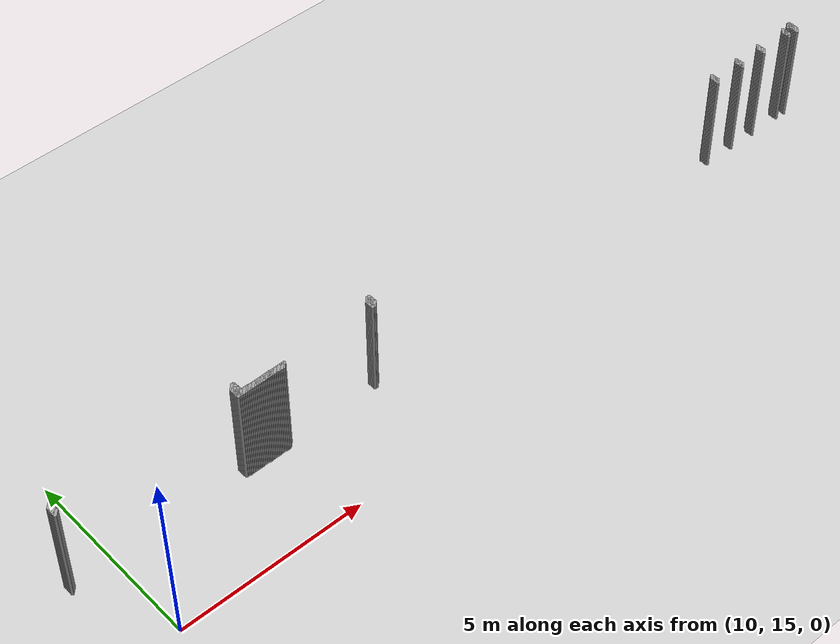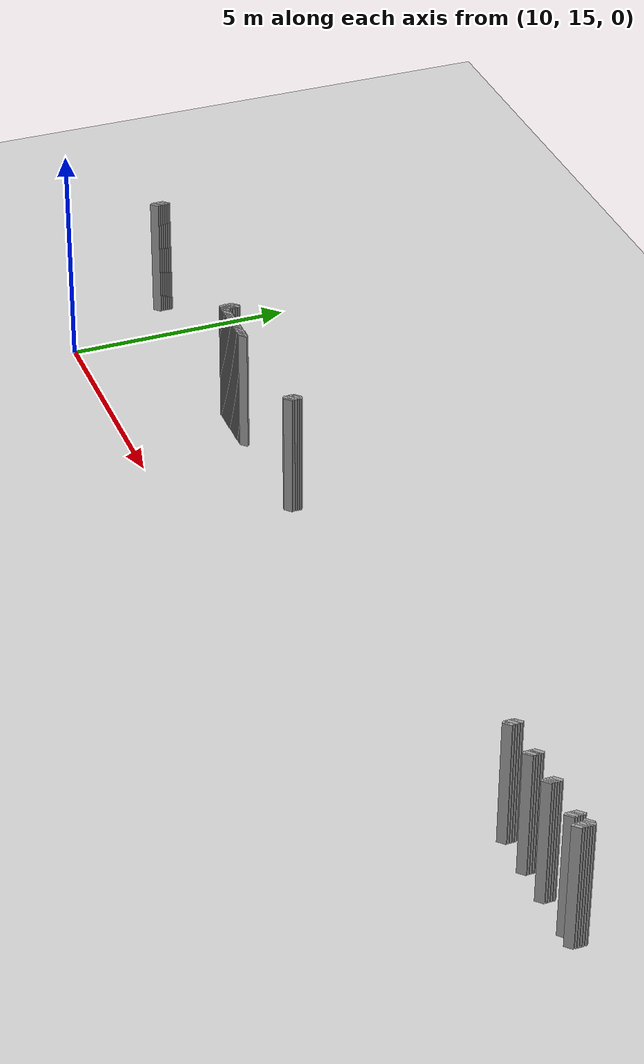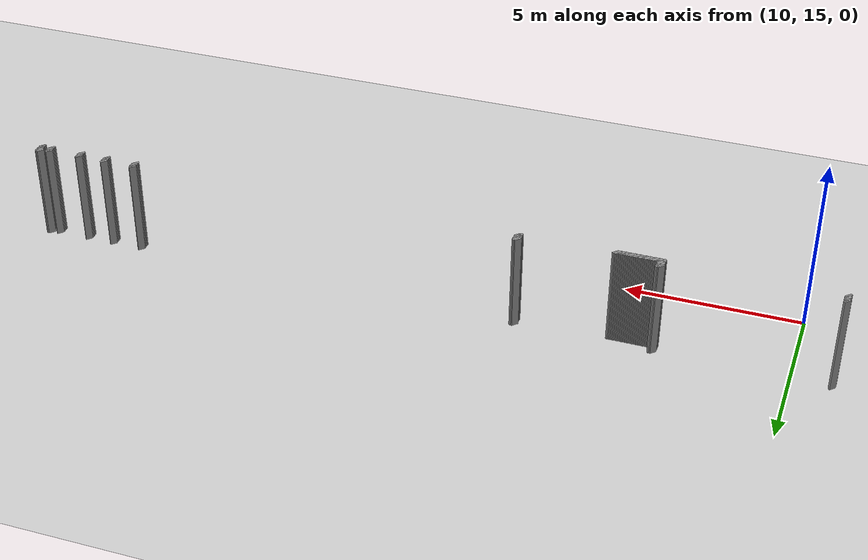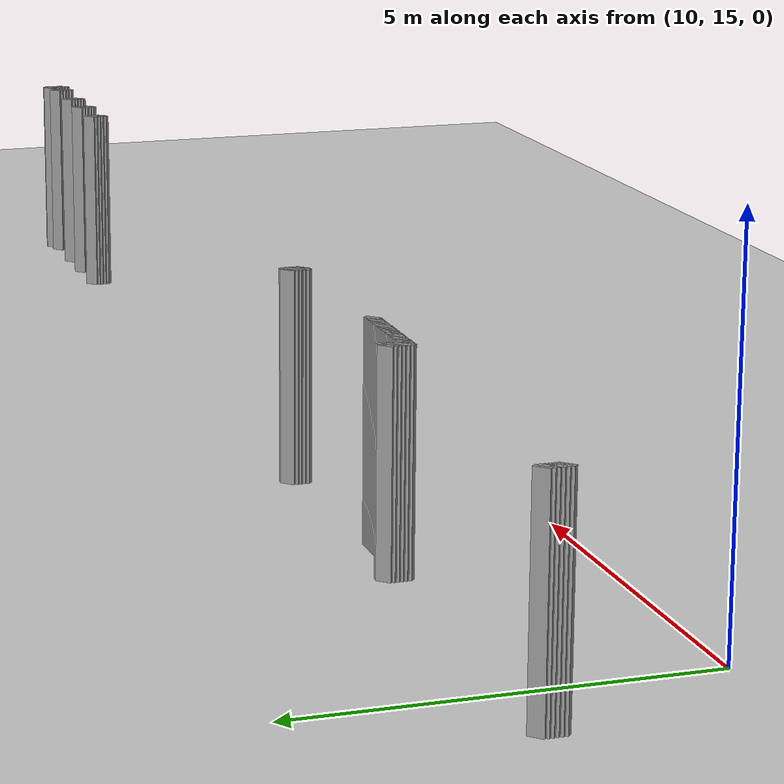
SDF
<sdf version="1.5">
 <world name="default">
  <include><uri>model://ground_plane</uri></include>
  <include><uri>model://sun</uri></include>
  <model name="grey_wall_790">
   <static>1</static>
   <link name="link">
    <pose>31.7 17.65  1.4 0 0 -0.785398163397</pose>
    <collision name="collision"><geometry><box><size>0.0707106781187 .2  2.8</size></box></geometry></collision>
    <visual name="visual">
     <cast_shadows>0</cast_shadows>
     <geometry><box><size>0.0707106781187 .2  2.8</size></box></geometry>
     <material>
      <script>
       <uri>model://grey_wall/materials/scripts</uri>
       <uri>model://grey_wall/materials/textures</uri>
       <name>vrc/grey_wall</name>
      </script>
     </material>
    </visual>
   </link>
  </model>
  <model name="grey_wall_791">
   <static>1</static>
   <link name="link">
    <pose>31.75 17.65  1.4 0 0 -0.785398163397</pose>
    <collision name="collision"><geometry><box><size>0.0707106781187 .2  2.8</size></box></geometry></collision>
    <visual name="visual">
     <cast_shadows>0</cast_shadows>
     <geometry><box><size>0.0707106781187 .2  2.8</size></box></geometry>
     <material>
      <script>
       <uri>model://grey_wall/materials/scripts</uri>
       <uri>model://grey_wall/materials/textures</uri>
       <name>vrc/grey_wall</name>
      </script>
     </material>
    </visual>
   </link>
  </model>
  <model name="grey_wall_792">
   <static>1</static>
   <link name="link">
    <pose>8.9 17.6  1.4 0 0 -0.785398163397</pose>
    <collision name="collision"><geometry><box><size>0.0707106781187 .2  2.8</size></box></geometry></collision>
    <visual name="visual">
     <cast_shadows>0</cast_shadows>
     <geometry><box><size>0.0707106781187 .2  2.8</size></box></geometry>
     <material>
      <script>
       <uri>model://grey_wall/materials/scripts</uri>
       <uri>model://grey_wall/materials/textures</uri>
       <name>vrc/grey_wall</name>
      </script>
     </material>
    </visual>
   </link>
  </model>
  <model name="grey_wall_793">
   <static>1</static>
   <link name="link">
    <pose>13.65 17.6  1.4 0 0 -0.785398163397</pose>
    <collision name="collision"><geometry><box><size>0.0707106781187 .2  2.8</size></box></geometry></collision>
    <visual name="visual">
     <cast_shadows>0</cast_shadows>
     <geometry><box><size>0.0707106781187 .2  2.8</size></box></geometry>
     <material>
      <script>
       <uri>model://grey_wall/materials/scripts</uri>
       <uri>model://grey_wall/materials/textures</uri>
       <name>vrc/grey_wall</name>
      </script>
     </material>
    </visual>
   </link>
  </model>
  <model name="grey_wall_794">
   <static>1</static>
   <link name="link">
    <pose>13.7 17.6  1.4 0 0 -0.785398163397</pose>
    <collision name="collision"><geometry><box><size>0.0707106781187 .2  2.8</size></box></geometry></collision>
    <visual name="visual">
     <cast_shadows>0</cast_shadows>
     <geometry><box><size>0.0707106781187 .2  2.8</size></box></geometry>
     <material>
      <script>
       <uri>model://grey_wall/materials/scripts</uri>
       <uri>model://grey_wall/materials/textures</uri>
       <name>vrc/grey_wall</name>
      </script>
     </material>
    </visual>
   </link>
  </model>
  <model name="grey_wall_795">
   <static>1</static>
   <link name="link">
    <pose>17.5 17.6  1.4 0 0 -0.785398163397</pose>
    <collision name="collision"><geometry><box><size>0.0707106781187 .2  2.8</size></box></geometry></collision>
    <visual name="visual">
     <cast_shadows>0</cast_shadows>
     <geometry><box><size>0.0707106781187 .2  2.8</size></box></geometry>
     <material>
      <script>
       <uri>model://grey_wall/materials/scripts</uri>
       <uri>model://grey_wall/materials/textures</uri>
       <name>vrc/grey_wall</name>
      </script>
     </material>
    </visual>
   </link>
  </model>
  <model name="grey_wall_796">
   <static>1</static>
   <link name="link">
    <pose>17.55 17.6  1.4 0 0 -0.785398163397</pose>
    <collision name="collision"><geometry><box><size>0.0707106781187 .2  2.8</size></box></geometry></collision>
    <visual name="visual">
     <cast_shadows>0</cast_shadows>
     <geometry><box><size>0.0707106781187 .2  2.8</size></box></geometry>
     <material>
      <script>
       <uri>model://grey_wall/materials/scripts</uri>
       <uri>model://grey_wall/materials/textures</uri>
       <name>vrc/grey_wall</name>
      </script>
     </material>
    </visual>
   </link>
  </model>
  <model name="grey_wall_797">
   <static>1</static>
   <link name="link">
    <pose>28.8 17.6  1.4 0 0 -0.785398163397</pose>
    <collision name="collision"><geometry><box><size>0.0707106781187 .2  2.8</size></box></geometry></collision>
    <visual name="visual">
     <cast_shadows>0</cast_shadows>
     <geometry><box><size>0.0707106781187 .2  2.8</size></box></geometry>
     <material>
      <script>
       <uri>model://grey_wall/materials/scripts</uri>
       <uri>model://grey_wall/materials/textures</uri>
       <name>vrc/grey_wall</name>
      </script>
     </material>
    </visual>
   </link>
  </model>
  <model name="grey_wall_798">
   <static>1</static>
   <link name="link">
    <pose>29.7 17.6  1.4 0 0 -0.785398163397</pose>
    <collision name="collision"><geometry><box><size>0.0707106781187 .2  2.8</size></box></geometry></collision>
    <visual name="visual">
     <cast_shadows>0</cast_shadows>
     <geometry><box><size>0.0707106781187 .2  2.8</size></box></geometry>
     <material>
      <script>
       <uri>model://grey_wall/materials/scripts</uri>
       <uri>model://grey_wall/materials/textures</uri>
       <name>vrc/grey_wall</name>
      </script>
     </material>
    </visual>
   </link>
  </model>
  <model name="grey_wall_799">
   <static>1</static>
   <link name="link">
    <pose>30.5 17.6  1.4 0 0 -0.785398163397</pose>
    <collision name="collision"><geometry><box><size>0.0707106781187 .2  2.8</size></box></geometry></collision>
    <visual name="visual">
     <cast_shadows>0</cast_shadows>
     <geometry><box><size>0.0707106781187 .2  2.8</size></box></geometry>
     <material>
      <script>
       <uri>model://grey_wall/materials/scripts</uri>
       <uri>model://grey_wall/materials/textures</uri>
       <name>vrc/grey_wall</name>
      </script>
     </material>
    </visual>
   </link>
  </model>
  <model name="grey_wall_800">
   <static>1</static>
   <link name="link">
    <pose>31.45 17.6  1.4 0 0 -0.785398163397</pose>
    <collision name="collision"><geometry><box><size>0.0707106781187 .2  2.8</size></box></geometry></collision>
    <visual name="visual">
     <cast_shadows>0</cast_shadows>
     <geometry><box><size>0.0707106781187 .2  2.8</size></box></geometry>
     <material>
      <script>
       <uri>model://grey_wall/materials/scripts</uri>
       <uri>model://grey_wall/materials/textures</uri>
       <name>vrc/grey_wall</name>
      </script>
     </material>
    </visual>
   </link>
  </model>
  <model name="grey_wall_801">
   <static>1</static>
   <link name="link">
    <pose>31.75 17.6  1.4 0 0 -0.785398163397</pose>
    <collision name="collision"><geometry><box><size>0.0707106781187 .2  2.8</size></box></geometry></collision>
    <visual name="visual">
     <cast_shadows>0</cast_shadows>
     <geometry><box><size>0.0707106781187 .2  2.8</size></box></geometry>
     <material>
      <script>
       <uri>model://grey_wall/materials/scripts</uri>
       <uri>model://grey_wall/materials/textures</uri>
       <name>vrc/grey_wall</name>
      </script>
     </material>
    </visual>
   </link>
  </model>
  <model name="grey_wall_802">
   <static>1</static>
   <link name="link">
    <pose>8.9 17.55  1.4 0 0 -0.785398163397</pose>
    <collision name="collision"><geometry><box><size>0.0707106781187 .2  2.8</size></box></geometry></collision>
    <visual name="visual">
     <cast_shadows>0</cast_shadows>
     <geometry><box><size>0.0707106781187 .2  2.8</size></box></geometry>
     <material>
      <script>
       <uri>model://grey_wall/materials/scripts</uri>
       <uri>model://grey_wall/materials/textures</uri>
       <name>vrc/grey_wall</name>
      </script>
     </material>
    </visual>
   </link>
  </model>
  <model name="grey_wall_803">
   <static>1</static>
   <link name="link">
    <pose>13.65 17.55  1.4 0 0 -0.785398163397</pose>
    <collision name="collision"><geometry><box><size>0.0707106781187 .2  2.8</size></box></geometry></collision>
    <visual name="visual">
     <cast_shadows>0</cast_shadows>
     <geometry><box><size>0.0707106781187 .2  2.8</size></box></geometry>
     <material>
      <script>
       <uri>model://grey_wall/materials/scripts</uri>
       <uri>model://grey_wall/materials/textures</uri>
       <name>vrc/grey_wall</name>
      </script>
     </material>
    </visual>
   </link>
  </model>
  <model name="grey_wall_804">
   <static>1</static>
   <link name="link">
    <pose>13.7 17.55  1.4 0 0 -0.785398163397</pose>
    <collision name="collision"><geometry><box><size>0.0707106781187 .2  2.8</size></box></geometry></collision>
    <visual name="visual">
     <cast_shadows>0</cast_shadows>
     <geometry><box><size>0.0707106781187 .2  2.8</size></box></geometry>
     <material>
      <script>
       <uri>model://grey_wall/materials/scripts</uri>
       <uri>model://grey_wall/materials/textures</uri>
       <name>vrc/grey_wall</name>
      </script>
     </material>
    </visual>
   </link>
  </model>
  <model name="grey_wall_805">
   <static>1</static>
   <link name="link">
    <pose>17.5 17.55  1.4 0 0 -0.785398163397</pose>
    <collision name="collision"><geometry><box><size>0.0707106781187 .2  2.8</size></box></geometry></collision>
    <visual name="visual">
     <cast_shadows>0</cast_shadows>
     <geometry><box><size>0.0707106781187 .2  2.8</size></box></geometry>
     <material>
      <script>
       <uri>model://grey_wall/materials/scripts</uri>
       <uri>model://grey_wall/materials/textures</uri>
       <name>vrc/grey_wall</name>
      </script>
     </material>
    </visual>
   </link>
  </model>
  <model name="grey_wall_806">
   <static>1</static>
   <link name="link">
    <pose>17.55 17.55  1.4 0 0 -0.785398163397</pose>
    <collision name="collision"><geometry><box><size>0.0707106781187 .2  2.8</size></box></geometry></collision>
    <visual name="visual">
     <cast_shadows>0</cast_shadows>
     <geometry><box><size>0.0707106781187 .2  2.8</size></box></geometry>
     <material>
      <script>
       <uri>model://grey_wall/materials/scripts</uri>
       <uri>model://grey_wall/materials/textures</uri>
       <name>vrc/grey_wall</name>
      </script>
     </material>
    </visual>
   </link>
  </model>
  <model name="grey_wall_807">
   <static>1</static>
   <link name="link">
    <pose>28.8 17.55  1.4 0 0 -0.785398163397</pose>
    <collision name="collision"><geometry><box><size>0.0707106781187 .2  2.8</size></box></geometry></collision>
    <visual name="visual">
     <cast_shadows>0</cast_shadows>
     <geometry><box><size>0.0707106781187 .2  2.8</size></box></geometry>
     <material>
      <script>
       <uri>model://grey_wall/materials/scripts</uri>
       <uri>model://grey_wall/materials/textures</uri>
       <name>vrc/grey_wall</name>
      </script>
     </material>
    </visual>
   </link>
  </model>
  <model name="grey_wall_808">
   <static>1</static>
   <link name="link">
    <pose>29.7 17.55  1.4 0 0 -0.785398163397</pose>
    <collision name="collision"><geometry><box><size>0.0707106781187 .2  2.8</size></box></geometry></collision>
    <visual name="visual">
     <cast_shadows>0</cast_shadows>
     <geometry><box><size>0.0707106781187 .2  2.8</size></box></geometry>
     <material>
      <script>
       <uri>model://grey_wall/materials/scripts</uri>
       <uri>model://grey_wall/materials/textures</uri>
       <name>vrc/grey_wall</name>
      </script>
     </material>
    </visual>
   </link>
  </model>
  <model name="grey_wall_809">
   <static>1</static>
   <link name="link">
    <pose>30.5 17.55  1.4 0 0 -0.785398163397</pose>
    <collision name="collision"><geometry><box><size>0.0707106781187 .2  2.8</size></box></geometry></collision>
    <visual name="visual">
     <cast_shadows>0</cast_shadows>
     <geometry><box><size>0.0707106781187 .2  2.8</size></box></geometry>
     <material>
      <script>
       <uri>model://grey_wall/materials/scripts</uri>
       <uri>model://grey_wall/materials/textures</uri>
       <name>vrc/grey_wall</name>
      </script>
     </material>
    </visual>
   </link>
  </model>
  <model name="grey_wall_810">
   <static>1</static>
   <link name="link">
    <pose>31.45 17.55  1.4 0 0 -0.785398163397</pose>
    <collision name="collision"><geometry><box><size>0.0707106781187 .2  2.8</size></box></geometry></collision>
    <visual name="visual">
     <cast_shadows>0</cast_shadows>
     <geometry><box><size>0.0707106781187 .2  2.8</size></box></geometry>
     <material>
      <script>
       <uri>model://grey_wall/materials/scripts</uri>
       <uri>model://grey_wall/materials/textures</uri>
       <name>vrc/grey_wall</name>
      </script>
     </material>
    </visual>
   </link>
  </model>
  <model name="grey_wall_811">
   <static>1</static>
   <link name="link">
    <pose>31.75 17.55  1.4 0 0 -0.785398163397</pose>
    <collision name="collision"><geometry><box><size>0.0707106781187 .2  2.8</size></box></geometry></collision>
    <visual name="visual">
     <cast_shadows>0</cast_shadows>
     <geometry><box><size>0.0707106781187 .2  2.8</size></box></geometry>
     <material>
      <script>
       <uri>model://grey_wall/materials/scripts</uri>
       <uri>model://grey_wall/materials/textures</uri>
       <name>vrc/grey_wall</name>
      </script>
     </material>
    </visual>
   </link>
  </model>
  <model name="grey_wall_812">
   <static>1</static>
   <link name="link">
    <pose>8.9 17.5  1.4 0 0 -0.785398163397</pose>
    <collision name="collision"><geometry><box><size>0.0707106781187 .2  2.8</size></box></geometry></collision>
    <visual name="visual">
     <cast_shadows>0</cast_shadows>
     <geometry><box><size>0.0707106781187 .2  2.8</size></box></geometry>
     <material>
      <script>
       <uri>model://grey_wall/materials/scripts</uri>
       <uri>model://grey_wall/materials/textures</uri>
       <name>vrc/grey_wall</name>
      </script>
     </material>
    </visual>
   </link>
  </model>
  <model name="grey_wall_813">
   <static>1</static>
   <link name="link">
    <pose>13.65 17.5  1.4 0 0 -0.785398163397</pose>
    <collision name="collision"><geometry><box><size>0.0707106781187 .2  2.8</size></box></geometry></collision>
    <visual name="visual">
     <cast_shadows>0</cast_shadows>
     <geometry><box><size>0.0707106781187 .2  2.8</size></box></geometry>
     <material>
      <script>
       <uri>model://grey_wall/materials/scripts</uri>
       <uri>model://grey_wall/materials/textures</uri>
       <name>vrc/grey_wall</name>
      </script>
     </material>
    </visual>
   </link>
  </model>
  <model name="grey_wall_814">
   <static>1</static>
   <link name="link">
    <pose>13.7 17.5  1.4 0 0 -0.785398163397</pose>
    <collision name="collision"><geometry><box><size>0.0707106781187 .2  2.8</size></box></geometry></collision>
    <visual name="visual">
     <cast_shadows>0</cast_shadows>
     <geometry><box><size>0.0707106781187 .2  2.8</size></box></geometry>
     <material>
      <script>
       <uri>model://grey_wall/materials/scripts</uri>
       <uri>model://grey_wall/materials/textures</uri>
       <name>vrc/grey_wall</name>
      </script>
     </material>
    </visual>
   </link>
  </model>
  <model name="grey_wall_815">
   <static>1</static>
   <link name="link">
    <pose>17.5 17.5  1.4 0 0 -0.785398163397</pose>
    <collision name="collision"><geometry><box><size>0.0707106781187 .2  2.8</size></box></geometry></collision>
    <visual name="visual">
     <cast_shadows>0</cast_shadows>
     <geometry><box><size>0.0707106781187 .2  2.8</size></box></geometry>
     <material>
      <script>
       <uri>model://grey_wall/materials/scripts</uri>
       <uri>model://grey_wall/materials/textures</uri>
       <name>vrc/grey_wall</name>
      </script>
     </material>
    </visual>
   </link>
  </model>
  <model name="grey_wall_816">
   <static>1</static>
   <link name="link">
    <pose>17.55 17.5  1.4 0 0 -0.785398163397</pose>
    <collision name="collision"><geometry><box><size>0.0707106781187 .2  2.8</size></box></geometry></collision>
    <visual name="visual">
     <cast_shadows>0</cast_shadows>
     <geometry><box><size>0.0707106781187 .2  2.8</size></box></geometry>
     <material>
      <script>
       <uri>model://grey_wall/materials/scripts</uri>
       <uri>model://grey_wall/materials/textures</uri>
       <name>vrc/grey_wall</name>
      </script>
     </material>
    </visual>
   </link>
  </model>
  <model name="grey_wall_817">
   <static>1</static>
   <link name="link">
    <pose>28.8 17.5  1.4 0 0 -0.785398163397</pose>
    <collision name="collision"><geometry><box><size>0.0707106781187 .2  2.8</size></box></geometry></collision>
    <visual name="visual">
     <cast_shadows>0</cast_shadows>
     <geometry><box><size>0.0707106781187 .2  2.8</size></box></geometry>
     <material>
      <script>
       <uri>model://grey_wall/materials/scripts</uri>
       <uri>model://grey_wall/materials/textures</uri>
       <name>vrc/grey_wall</name>
      </script>
     </material>
    </visual>
   </link>
  </model>
  <model name="grey_wall_818">
   <static>1</static>
   <link name="link">
    <pose>29.7 17.5  1.4 0 0 -0.785398163397</pose>
    <collision name="collision"><geometry><box><size>0.0707106781187 .2  2.8</size></box></geometry></collision>
    <visual name="visual">
     <cast_shadows>0</cast_shadows>
     <geometry><box><size>0.0707106781187 .2  2.8</size></box></geometry>
     <material>
      <script>
       <uri>model://grey_wall/materials/scripts</uri>
       <uri>model://grey_wall/materials/textures</uri>
       <name>vrc/grey_wall</name>
      </script>
     </material>
    </visual>
   </link>
  </model>
  <model name="grey_wall_819">
   <static>1</static>
   <link name="link">
    <pose>30.5 17.5  1.4 0 0 -0.785398163397</pose>
    <collision name="collision"><geometry><box><size>0.0707106781187 .2  2.8</size></box></geometry></collision>
    <visual name="visual">
     <cast_shadows>0</cast_shadows>
     <geometry><box><size>0.0707106781187 .2  2.8</size></box></geometry>
     <material>
      <script>
       <uri>model://grey_wall/materials/scripts</uri>
       <uri>model://grey_wall/materials/textures</uri>
       <name>vrc/grey_wall</name>
      </script>
     </material>
    </visual>
   </link>
  </model>
  <model name="grey_wall_820">
   <static>1</static>
   <link name="link">
    <pose>31.45 17.5  1.4 0 0 -0.785398163397</pose>
    <collision name="collision"><geometry><box><size>0.0707106781187 .2  2.8</size></box></geometry></collision>
    <visual name="visual">
     <cast_shadows>0</cast_shadows>
     <geometry><box><size>0.0707106781187 .2  2.8</size></box></geometry>
     <material>
      <script>
       <uri>model://grey_wall/materials/scripts</uri>
       <uri>model://grey_wall/materials/textures</uri>
       <name>vrc/grey_wall</name>
      </script>
     </material>
    </visual>
   </link>
  </model>
  <model name="grey_wall_821">
   <static>1</static>
   <link name="link">
    <pose>31.75 17.5  1.4 0 0 -0.785398163397</pose>
    <collision name="collision"><geometry><box><size>0.0707106781187 .2  2.8</size></box></geometry></collision>
    <visual name="visual">
     <cast_shadows>0</cast_shadows>
     <geometry><box><size>0.0707106781187 .2  2.8</size></box></geometry>
     <material>
      <script>
       <uri>model://grey_wall/materials/scripts</uri>
       <uri>model://grey_wall/materials/textures</uri>
       <name>vrc/grey_wall</name>
      </script>
     </material>
    </visual>
   </link>
  </model>
  <model name="grey_wall_822">
   <static>1</static>
   <link name="link">
    <pose>8.9 17.45  1.4 0 0 -0.785398163397</pose>
    <collision name="collision"><geometry><box><size>0.0707106781187 .2  2.8</size></box></geometry></collision>
    <visual name="visual">
     <cast_shadows>0</cast_shadows>
     <geometry><box><size>0.0707106781187 .2  2.8</size></box></geometry>
     <material>
      <script>
       <uri>model://grey_wall/materials/scripts</uri>
       <uri>model://grey_wall/materials/textures</uri>
       <name>vrc/grey_wall</name>
      </script>
     </material>
    </visual>
   </link>
  </model>
  <model name="grey_wall_823">
   <static>1</static>
   <link name="link">
    <pose>13.65 17.45  1.4 0 0 -0.785398163397</pose>
    <collision name="collision"><geometry><box><size>0.0707106781187 .2  2.8</size></box></geometry></collision>
    <visual name="visual">
     <cast_shadows>0</cast_shadows>
     <geometry><box><size>0.0707106781187 .2  2.8</size></box></geometry>
     <material>
      <script>
       <uri>model://grey_wall/materials/scripts</uri>
       <uri>model://grey_wall/materials/textures</uri>
       <name>vrc/grey_wall</name>
      </script>
     </material>
    </visual>
   </link>
  </model>
  <model name="grey_wall_824">
   <static>1</static>
   <link name="link">
    <pose>13.7 17.45  1.4 0 0 -0.785398163397</pose>
    <collision name="collision"><geometry><box><size>0.0707106781187 .2  2.8</size></box></geometry></collision>
    <visual name="visual">
     <cast_shadows>0</cast_shadows>
     <geometry><box><size>0.0707106781187 .2  2.8</size></box></geometry>
     <material>
      <script>
       <uri>model://grey_wall/materials/scripts</uri>
       <uri>model://grey_wall/materials/textures</uri>
       <name>vrc/grey_wall</name>
      </script>
     </material>
    </visual>
   </link>
  </model>
  <model name="grey_wall_825">
   <static>1</static>
   <link name="link">
    <pose>17.5 17.45  1.4 0 0 -0.785398163397</pose>
    <collision name="collision"><geometry><box><size>0.0707106781187 .2  2.8</size></box></geometry></collision>
    <visual name="visual">
     <cast_shadows>0</cast_shadows>
     <geometry><box><size>0.0707106781187 .2  2.8</size></box></geometry>
     <material>
      <script>
       <uri>model://grey_wall/materials/scripts</uri>
       <uri>model://grey_wall/materials/textures</uri>
       <name>vrc/grey_wall</name>
      </script>
     </material>
    </visual>
   </link>
  </model>
  <model name="grey_wall_826">
   <static>1</static>
   <link name="link">
    <pose>17.55 17.45  1.4 0 0 -0.785398163397</pose>
    <collision name="collision"><geometry><box><size>0.0707106781187 .2  2.8</size></box></geometry></collision>
    <visual name="visual">
     <cast_shadows>0</cast_shadows>
     <geometry><box><size>0.0707106781187 .2  2.8</size></box></geometry>
     <material>
      <script>
       <uri>model://grey_wall/materials/scripts</uri>
       <uri>model://grey_wall/materials/textures</uri>
       <name>vrc/grey_wall</name>
      </script>
     </material>
    </visual>
   </link>
  </model>
  <model name="grey_wall_827">
   <static>1</static>
   <link name="link">
    <pose>28.8 17.45  1.4 0 0 -0.785398163397</pose>
    <collision name="collision"><geometry><box><size>0.0707106781187 .2  2.8</size></box></geometry></collision>
    <visual name="visual">
     <cast_shadows>0</cast_shadows>
     <geometry><box><size>0.0707106781187 .2  2.8</size></box></geometry>
     <material>
      <script>
       <uri>model://grey_wall/materials/scripts</uri>
       <uri>model://grey_wall/materials/textures</uri>
       <name>vrc/grey_wall</name>
      </script>
     </material>
    </visual>
   </link>
  </model>
  <model name="grey_wall_828">
   <static>1</static>
   <link name="link">
    <pose>29.7 17.45  1.4 0 0 -0.785398163397</pose>
    <collision name="collision"><geometry><box><size>0.0707106781187 .2  2.8</size></box></geometry></collision>
    <visual name="visual">
     <cast_shadows>0</cast_shadows>
     <geometry><box><size>0.0707106781187 .2  2.8</size></box></geometry>
     <material>
      <script>
       <uri>model://grey_wall/materials/scripts</uri>
       <uri>model://grey_wall/materials/textures</uri>
       <name>vrc/grey_wall</name>
      </script>
     </material>
    </visual>
   </link>
  </model>
  <model name="grey_wall_829">
   <static>1</static>
   <link name="link">
    <pose>30.5 17.45  1.4 0 0 -0.785398163397</pose>
    <collision name="collision"><geometry><box><size>0.0707106781187 .2  2.8</size></box></geometry></collision>
    <visual name="visual">
     <cast_shadows>0</cast_shadows>
     <geometry><box><size>0.0707106781187 .2  2.8</size></box></geometry>
     <material>
      <script>
       <uri>model://grey_wall/materials/scripts</uri>
       <uri>model://grey_wall/materials/textures</uri>
       <name>vrc/grey_wall</name>
      </script>
     </material>
    </visual>
   </link>
  </model>
  <model name="grey_wall_830">
   <static>1</static>
   <link name="link">
    <pose>31.45 17.45  1.4 0 0 -0.785398163397</pose>
    <collision name="collision"><geometry><box><size>0.0707106781187 .2  2.8</size></box></geometry></collision>
    <visual name="visual">
     <cast_shadows>0</cast_shadows>
     <geometry><box><size>0.0707106781187 .2  2.8</size></box></geometry>
     <material>
      <script>
       <uri>model://grey_wall/materials/scripts</uri>
       <uri>model://grey_wall/materials/textures</uri>
       <name>vrc/grey_wall</name>
      </script>
     </material>
    </visual>
   </link>
  </model>
  <model name="grey_wall_831">
   <static>1</static>
   <link name="link">
    <pose>31.75 17.45  1.4 0 0 -0.785398163397</pose>
    <collision name="collision"><geometry><box><size>0.0707106781187 .2  2.8</size></box></geometry></collision>
    <visual name="visual">
     <cast_shadows>0</cast_shadows>
     <geometry><box><size>0.0707106781187 .2  2.8</size></box></geometry>
     <material>
      <script>
       <uri>model://grey_wall/materials/scripts</uri>
       <uri>model://grey_wall/materials/textures</uri>
       <name>vrc/grey_wall</name>
      </script>
     </material>
    </visual>
   </link>
  </model>
  <model name="grey_wall_832">
   <static>1</static>
   <link name="link">
    <pose>8.9 17.4  1.4 0 0 -0.785398163397</pose>
    <collision name="collision"><geometry><box><size>0.0707106781187 .2  2.8</size></box></geometry></collision>
    <visual name="visual">
     <cast_shadows>0</cast_shadows>
     <geometry><box><size>0.0707106781187 .2  2.8</size></box></geometry>
     <material>
      <script>
       <uri>model://grey_wall/materials/scripts</uri>
       <uri>model://grey_wall/materials/textures</uri>
       <name>vrc/grey_wall</name>
      </script>
     </material>
    </visual>
   </link>
  </model>
  <model name="grey_wall_833">
   <static>1</static>
   <link name="link">
    <pose>13.65 17.4  1.4 0 0 -0.785398163397</pose>
    <collision name="collision"><geometry><box><size>0.0707106781187 .2  2.8</size></box></geometry></collision>
    <visual name="visual">
     <cast_shadows>0</cast_shadows>
     <geometry><box><size>0.0707106781187 .2  2.8</size></box></geometry>
     <material>
      <script>
       <uri>model://grey_wall/materials/scripts</uri>
       <uri>model://grey_wall/materials/textures</uri>
       <name>vrc/grey_wall</name>
      </script>
     </material>
    </visual>
   </link>
  </model>
  <model name="grey_wall_834">
   <static>1</static>
   <link name="link">
    <pose>13.7 17.4  1.4 0 0 -0.785398163397</pose>
    <collision name="collision"><geometry><box><size>0.0707106781187 .2  2.8</size></box></geometry></collision>
    <visual name="visual">
     <cast_shadows>0</cast_shadows>
     <geometry><box><size>0.0707106781187 .2  2.8</size></box></geometry>
     <material>
      <script>
       <uri>model://grey_wall/materials/scripts</uri>
       <uri>model://grey_wall/materials/textures</uri>
       <name>vrc/grey_wall</name>
      </script>
     </material>
    </visual>
   </link>
  </model>
  <model name="grey_wall_835">
   <static>1</static>
   <link name="link">
    <pose>17.5 17.4  1.4 0 0 -0.785398163397</pose>
    <collision name="collision"><geometry><box><size>0.0707106781187 .2  2.8</size></box></geometry></collision>
    <visual name="visual">
     <cast_shadows>0</cast_shadows>
     <geometry><box><size>0.0707106781187 .2  2.8</size></box></geometry>
     <material>
      <script>
       <uri>model://grey_wall/materials/scripts</uri>
       <uri>model://grey_wall/materials/textures</uri>
       <name>vrc/grey_wall</name>
      </script>
     </material>
    </visual>
   </link>
  </model>
  <model name="grey_wall_836">
   <static>1</static>
   <link name="link">
    <pose>17.55 17.4  1.4 0 0 -0.785398163397</pose>
    <collision name="collision"><geometry><box><size>0.0707106781187 .2  2.8</size></box></geometry></collision>
    <visual name="visual">
     <cast_shadows>0</cast_shadows>
     <geometry><box><size>0.0707106781187 .2  2.8</size></box></geometry>
     <material>
      <script>
       <uri>model://grey_wall/materials/scripts</uri>
       <uri>model://grey_wall/materials/textures</uri>
       <name>vrc/grey_wall</name>
      </script>
     </material>
    </visual>
   </link>
  </model>
  <model name="grey_wall_837">
   <static>1</static>
   <link name="link">
    <pose>28.8 17.4  1.4 0 0 -0.785398163397</pose>
    <collision name="collision"><geometry><box><size>0.0707106781187 .2  2.8</size></box></geometry></collision>
    <visual name="visual">
     <cast_shadows>0</cast_shadows>
     <geometry><box><size>0.0707106781187 .2  2.8</size></box></geometry>
     <material>
      <script>
       <uri>model://grey_wall/materials/scripts</uri>
       <uri>model://grey_wall/materials/textures</uri>
       <name>vrc/grey_wall</name>
      </script>
     </material>
    </visual>
   </link>
  </model>
  <model name="grey_wall_838">
   <static>1</static>
   <link name="link">
    <pose>29.7 17.4  1.4 0 0 -0.785398163397</pose>
    <collision name="collision"><geometry><box><size>0.0707106781187 .2  2.8</size></box></geometry></collision>
    <visual name="visual">
     <cast_shadows>0</cast_shadows>
     <geometry><box><size>0.0707106781187 .2  2.8</size></box></geometry>
     <material>
      <script>
       <uri>model://grey_wall/materials/scripts</uri>
       <uri>model://grey_wall/materials/textures</uri>
       <name>vrc/grey_wall</name>
      </script>
     </material>
    </visual>
   </link>
  </model>
  <model name="grey_wall_839">
   <static>1</static>
   <link name="link">
    <pose>30.5 17.4  1.4 0 0 -0.785398163397</pose>
    <collision name="collision"><geometry><box><size>0.0707106781187 .2  2.8</size></box></geometry></collision>
    <visual name="visual">
     <cast_shadows>0</cast_shadows>
     <geometry><box><size>0.0707106781187 .2  2.8</size></box></geometry>
     <material>
      <script>
       <uri>model://grey_wall/materials/scripts</uri>
       <uri>model://grey_wall/materials/textures</uri>
       <name>vrc/grey_wall</name>
      </script>
     </material>
    </visual>
   </link>
  </model>
  <model name="grey_wall_840">
   <static>1</static>
   <link name="link">
    <pose>31.45 17.4  1.4 0 0 -0.785398163397</pose>
    <collision name="collision"><geometry><box><size>0.0707106781187 .2  2.8</size></box></geometry></collision>
    <visual name="visual">
     <cast_shadows>0</cast_shadows>
     <geometry><box><size>0.0707106781187 .2  2.8</size></box></geometry>
     <material>
      <script>
       <uri>model://grey_wall/materials/scripts</uri>
       <uri>model://grey_wall/materials/textures</uri>
       <name>vrc/grey_wall</name>
      </script>
     </material>
    </visual>
   </link>
  </model>
  <model name="grey_wall_841">
   <static>1</static>
   <link name="link">
    <pose>31.75 17.4  1.4 0 0 -0.785398163397</pose>
    <collision name="collision"><geometry><box><size>0.0707106781187 .2  2.8</size></box></geometry></collision>
    <visual name="visual">
     <cast_shadows>0</cast_shadows>
     <geometry><box><size>0.0707106781187 .2  2.8</size></box></geometry>
     <material>
      <script>
       <uri>model://grey_wall/materials/scripts</uri>
       <uri>model://grey_wall/materials/textures</uri>
       <name>vrc/grey_wall</name>
      </script>
     </material>
    </visual>
   </link>
  </model>
  <model name="grey_wall_842">
   <static>1</static>
   <link name="link">
    <pose>8.9 17.35  1.4 0 0 -0.785398163397</pose>
    <collision name="collision"><geometry><box><size>0.0707106781187 .2  2.8</size></box></geometry></collision>
    <visual name="visual">
     <cast_shadows>0</cast_shadows>
     <geometry><box><size>0.0707106781187 .2  2.8</size></box></geometry>
     <material>
      <script>
       <uri>model://grey_wall/materials/scripts</uri>
       <uri>model://grey_wall/materials/textures</uri>
       <name>vrc/grey_wall</name>
      </script>
     </material>
    </visual>
   </link>
  </model>
  <model name="grey_wall_843">
   <static>1</static>
   <link name="link">
    <pose>13.65 17.35  1.4 0 0 -0.785398163397</pose>
    <collision name="collision"><geometry><box><size>0.0707106781187 .2  2.8</size></box></geometry></collision>
    <visual name="visual">
     <cast_shadows>0</cast_shadows>
     <geometry><box><size>0.0707106781187 .2  2.8</size></box></geometry>
     <material>
      <script>
       <uri>model://grey_wall/materials/scripts</uri>
       <uri>model://grey_wall/materials/textures</uri>
       <name>vrc/grey_wall</name>
      </script>
     </material>
    </visual>
   </link>
  </model>
  <model name="grey_wall_844">
   <static>1</static>
   <link name="link">
    <pose>13.7 17.35  1.4 0 0 -0.785398163397</pose>
    <collision name="collision"><geometry><box><size>0.0707106781187 .2  2.8</size></box></geometry></collision>
    <visual name="visual">
     <cast_shadows>0</cast_shadows>
     <geometry><box><size>0.0707106781187 .2  2.8</size></box></geometry>
     <material>
      <script>
       <uri>model://grey_wall/materials/scripts</uri>
       <uri>model://grey_wall/materials/textures</uri>
       <name>vrc/grey_wall</name>
      </script>
     </material>
    </visual>
   </link>
  </model>
  <model name="grey_wall_845">
   <static>1</static>
   <link name="link">
    <pose>13.75 17.35  1.4 0 0 -0.785398163397</pose>
    <collision name="collision"><geometry><box><size>0.0707106781187 .2  2.8</size></box></geometry></collision>
    <visual name="visual">
     <cast_shadows>0</cast_shadows>
     <geometry><box><size>0.0707106781187 .2  2.8</size></box></geometry>
     <material>
      <script>
       <uri>model://grey_wall/materials/scripts</uri>
       <uri>model://grey_wall/materials/textures</uri>
       <name>vrc/grey_wall</name>
      </script>
     </material>
    </visual>
   </link>
  </model>
  <model name="grey_wall_846">
   <static>1</static>
   <link name="link">
    <pose>13.8 17.35  1.4 0 0 -0.785398163397</pose>
    <collision name="collision"><geometry><box><size>0.0707106781187 .2  2.8</size></box></geometry></collision>
    <visual name="visual">
     <cast_shadows>0</cast_shadows>
     <geometry><box><size>0.0707106781187 .2  2.8</size></box></geometry>
     <material>
      <script>
       <uri>model://grey_wall/materials/scripts</uri>
       <uri>model://grey_wall/materials/textures</uri>
       <name>vrc/grey_wall</name>
      </script>
     </material>
    </visual>
   </link>
  </model>
  <model name="grey_wall_847">
   <static>1</static>
   <link name="link">
    <pose>13.85 17.35  1.4 0 0 -0.785398163397</pose>
    <collision name="collision"><geometry><box><size>0.0707106781187 .2  2.8</size></box></geometry></collision>
    <visual name="visual">
     <cast_shadows>0</cast_shadows>
     <geometry><box><size>0.0707106781187 .2  2.8</size></box></geometry>
     <material>
      <script>
       <uri>model://grey_wall/materials/scripts</uri>
       <uri>model://grey_wall/materials/textures</uri>
       <name>vrc/grey_wall</name>
      </script>
     </material>
    </visual>
   </link>
  </model>
  <model name="grey_wall_848">
   <static>1</static>
   <link name="link">
    <pose>13.9 17.35  1.4 0 0 -0.785398163397</pose>
    <collision name="collision"><geometry><box><size>0.0707106781187 .2  2.8</size></box></geometry></collision>
    <visual name="visual">
     <cast_shadows>0</cast_shadows>
     <geometry><box><size>0.0707106781187 .2  2.8</size></box></geometry>
     <material>
      <script>
       <uri>model://grey_wall/materials/scripts</uri>
       <uri>model://grey_wall/materials/textures</uri>
       <name>vrc/grey_wall</name>
      </script>
     </material>
    </visual>
   </link>
  </model>
  <model name="grey_wall_849">
   <static>1</static>
   <link name="link">
    <pose>13.95 17.35  1.4 0 0 -0.785398163397</pose>
    <collision name="collision"><geometry><box><size>0.0707106781187 .2  2.8</size></box></geometry></collision>
    <visual name="visual">
     <cast_shadows>0</cast_shadows>
     <geometry><box><size>0.0707106781187 .2  2.8</size></box></geometry>
     <material>
      <script>
       <uri>model://grey_wall/materials/scripts</uri>
       <uri>model://grey_wall/materials/textures</uri>
       <name>vrc/grey_wall</name>
      </script>
     </material>
    </visual>
   </link>
  </model>
  <model name="grey_wall_850">
   <static>1</static>
   <link name="link">
    <pose>14.0 17.35  1.4 0 0 -0.785398163397</pose>
    <collision name="collision"><geometry><box><size>0.0707106781187 .2  2.8</size></box></geometry></collision>
    <visual name="visual">
     <cast_shadows>0</cast_shadows>
     <geometry><box><size>0.0707106781187 .2  2.8</size></box></geometry>
     <material>
      <script>
       <uri>model://grey_wall/materials/scripts</uri>
       <uri>model://grey_wall/materials/textures</uri>
       <name>vrc/grey_wall</name>
      </script>
     </material>
    </visual>
   </link>
  </model>
  <model name="grey_wall_851">
   <static>1</static>
   <link name="link">
    <pose>14.05 17.35  1.4 0 0 -0.785398163397</pose>
    <collision name="collision"><geometry><box><size>0.0707106781187 .2  2.8</size></box></geometry></collision>
    <visual name="visual">
     <cast_shadows>0</cast_shadows>
     <geometry><box><size>0.0707106781187 .2  2.8</size></box></geometry>
     <material>
      <script>
       <uri>model://grey_wall/materials/scripts</uri>
       <uri>model://grey_wall/materials/textures</uri>
       <name>vrc/grey_wall</name>
      </script>
     </material>
    </visual>
   </link>
  </model>
  <model name="grey_wall_852">
   <static>1</static>
   <link name="link">
    <pose>14.1 17.35  1.4 0 0 -0.785398163397</pose>
    <collision name="collision"><geometry><box><size>0.0707106781187 .2  2.8</size></box></geometry></collision>
    <visual name="visual">
     <cast_shadows>0</cast_shadows>
     <geometry><box><size>0.0707106781187 .2  2.8</size></box></geometry>
     <material>
      <script>
       <uri>model://grey_wall/materials/scripts</uri>
       <uri>model://grey_wall/materials/textures</uri>
       <name>vrc/grey_wall</name>
      </script>
     </material>
    </visual>
   </link>
  </model>
  <model name="grey_wall_853">
   <static>1</static>
   <link name="link">
    <pose>14.15 17.35  1.4 0 0 -0.785398163397</pose>
    <collision name="collision"><geometry><box><size>0.0707106781187 .2  2.8</size></box></geometry></collision>
    <visual name="visual">
     <cast_shadows>0</cast_shadows>
     <geometry><box><size>0.0707106781187 .2  2.8</size></box></geometry>
     <material>
      <script>
       <uri>model://grey_wall/materials/scripts</uri>
       <uri>model://grey_wall/materials/textures</uri>
       <name>vrc/grey_wall</name>
      </script>
     </material>
    </visual>
   </link>
  </model>
  <model name="grey_wall_854">
   <static>1</static>
   <link name="link">
    <pose>14.2 17.35  1.4 0 0 -0.785398163397</pose>
    <collision name="collision"><geometry><box><size>0.0707106781187 .2  2.8</size></box></geometry></collision>
    <visual name="visual">
     <cast_shadows>0</cast_shadows>
     <geometry><box><size>0.0707106781187 .2  2.8</size></box></geometry>
     <material>
      <script>
       <uri>model://grey_wall/materials/scripts</uri>
       <uri>model://grey_wall/materials/textures</uri>
       <name>vrc/grey_wall</name>
      </script>
     </material>
    </visual>
   </link>
  </model>
  <model name="grey_wall_855">
   <static>1</static>
   <link name="link">
    <pose>14.25 17.35  1.4 0 0 -0.785398163397</pose>
    <collision name="collision"><geometry><box><size>0.0707106781187 .2  2.8</size></box></geometry></collision>
    <visual name="visual">
     <cast_shadows>0</cast_shadows>
     <geometry><box><size>0.0707106781187 .2  2.8</size></box></geometry>
     <material>
      <script>
       <uri>model://grey_wall/materials/scripts</uri>
       <uri>model://grey_wall/materials/textures</uri>
       <name>vrc/grey_wall</name>
      </script>
     </material>
    </visual>
   </link>
  </model>
  <model name="grey_wall_856">
   <static>1</static>
   <link name="link">
    <pose>14.3 17.35  1.4 0 0 -0.785398163397</pose>
    <collision name="collision"><geometry><box><size>0.0707106781187 .2  2.8</size></box></geometry></collision>
    <visual name="visual">
     <cast_shadows>0</cast_shadows>
     <geometry><box><size>0.0707106781187 .2  2.8</size></box></geometry>
     <material>
      <script>
       <uri>model://grey_wall/materials/scripts</uri>
       <uri>model://grey_wall/materials/textures</uri>
       <name>vrc/grey_wall</name>
      </script>
     </material>
    </visual>
   </link>
  </model>
  <model name="grey_wall_857">
   <static>1</static>
   <link name="link">
    <pose>14.35 17.35  1.4 0 0 -0.785398163397</pose>
    <collision name="collision"><geometry><box><size>0.0707106781187 .2  2.8</size></box></geometry></collision>
    <visual name="visual">
     <cast_shadows>0</cast_shadows>
     <geometry><box><size>0.0707106781187 .2  2.8</size></box></geometry>
     <material>
      <script>
       <uri>model://grey_wall/materials/scripts</uri>
       <uri>model://grey_wall/materials/textures</uri>
       <name>vrc/grey_wall</name>
      </script>
     </material>
    </visual>
   </link>
  </model>
  <model name="grey_wall_858">
   <static>1</static>
   <link name="link">
    <pose>14.4 17.35  1.4 0 0 -0.785398163397</pose>
    <collision name="collision"><geometry><box><size>0.0707106781187 .2  2.8</size></box></geometry></collision>
    <visual name="visual">
     <cast_shadows>0</cast_shadows>
     <geometry><box><size>0.0707106781187 .2  2.8</size></box></geometry>
     <material>
      <script>
       <uri>model://grey_wall/materials/scripts</uri>
       <uri>model://grey_wall/materials/textures</uri>
       <name>vrc/grey_wall</name>
      </script>
     </material>
    </visual>
   </link>
  </model>
  <model name="grey_wall_859">
   <static>1</static>
   <link name="link">
    <pose>14.45 17.35  1.4 0 0 -0.785398163397</pose>
    <collision name="collision"><geometry><box><size>0.0707106781187 .2  2.8</size></box></geometry></collision>
    <visual name="visual">
     <cast_shadows>0</cast_shadows>
     <geometry><box><size>0.0707106781187 .2  2.8</size></box></geometry>
     <material>
      <script>
       <uri>model://grey_wall/materials/scripts</uri>
       <uri>model://grey_wall/materials/textures</uri>
       <name>vrc/grey_wall</name>
      </script>
     </material>
    </visual>
   </link>
  </model>
  <model name="grey_wall_860">
   <static>1</static>
   <link name="link">
    <pose>14.5 17.35  1.4 0 0 -0.785398163397</pose>
    <collision name="collision"><geometry><box><size>0.0707106781187 .2  2.8</size></box></geometry></collision>
    <visual name="visual">
     <cast_shadows>0</cast_shadows>
     <geometry><box><size>0.0707106781187 .2  2.8</size></box></geometry>
     <material>
      <script>
       <uri>model://grey_wall/materials/scripts</uri>
       <uri>model://grey_wall/materials/textures</uri>
       <name>vrc/grey_wall</name>
      </script>
     </material>
    </visual>
   </link>
  </model>
  <model name="grey_wall_861">
   <static>1</static>
   <link name="link">
    <pose>14.55 17.35  1.4 0 0 -0.785398163397</pose>
    <collision name="collision"><geometry><box><size>0.0707106781187 .2  2.8</size></box></geometry></collision>
    <visual name="visual">
     <cast_shadows>0</cast_shadows>
     <geometry><box><size>0.0707106781187 .2  2.8</size></box></geometry>
     <material>
      <script>
       <uri>model://grey_wall/materials/scripts</uri>
       <uri>model://grey_wall/materials/textures</uri>
       <name>vrc/grey_wall</name>
      </script>
     </material>
    </visual>
   </link>
  </model>
  <model name="grey_wall_862">
   <static>1</static>
   <link name="link">
    <pose>14.6 17.35  1.4 0 0 -0.785398163397</pose>
    <collision name="collision"><geometry><box><size>0.0707106781187 .2  2.8</size></box></geometry></collision>
    <visual name="visual">
     <cast_shadows>0</cast_shadows>
     <geometry><box><size>0.0707106781187 .2  2.8</size></box></geometry>
     <material>
      <script>
       <uri>model://grey_wall/materials/scripts</uri>
       <uri>model://grey_wall/materials/textures</uri>
       <name>vrc/grey_wall</name>
      </script>
     </material>
    </visual>
   </link>
  </model>
  <model name="grey_wall_863">
   <static>1</static>
   <link name="link">
    <pose>14.65 17.35  1.4 0 0 -0.785398163397</pose>
    <collision name="collision"><geometry><box><size>0.0707106781187 .2  2.8</size></box></geometry></collision>
    <visual name="visual">
     <cast_shadows>0</cast_shadows>
     <geometry><box><size>0.0707106781187 .2  2.8</size></box></geometry>
     <material>
      <script>
       <uri>model://grey_wall/materials/scripts</uri>
       <uri>model://grey_wall/materials/textures</uri>
       <name>vrc/grey_wall</name>
      </script>
     </material>
    </visual>
   </link>
  </model>
  <model name="grey_wall_864">
   <static>1</static>
   <link name="link">
    <pose>14.7 17.35  1.4 0 0 -0.785398163397</pose>
    <collision name="collision"><geometry><box><size>0.0707106781187 .2  2.8</size></box></geometry></collision>
    <visual name="visual">
     <cast_shadows>0</cast_shadows>
     <geometry><box><size>0.0707106781187 .2  2.8</size></box></geometry>
     <material>
      <script>
       <uri>model://grey_wall/materials/scripts</uri>
       <uri>model://grey_wall/materials/textures</uri>
       <name>vrc/grey_wall</name>
      </script>
     </material>
    </visual>
   </link>
  </model>
  <model name="grey_wall_865">
   <static>1</static>
   <link name="link">
    <pose>14.75 17.35  1.4 0 0 -0.785398163397</pose>
    <collision name="collision"><geometry><box><size>0.0707106781187 .2  2.8</size></box></geometry></collision>
    <visual name="visual">
     <cast_shadows>0</cast_shadows>
     <geometry><box><size>0.0707106781187 .2  2.8</size></box></geometry>
     <material>
      <script>
       <uri>model://grey_wall/materials/scripts</uri>
       <uri>model://grey_wall/materials/textures</uri>
       <name>vrc/grey_wall</name>
      </script>
     </material>
    </visual>
   </link>
  </model>
  <model name="grey_wall_866">
   <static>1</static>
   <link name="link">
    <pose>14.8 17.35  1.4 0 0 -0.785398163397</pose>
    <collision name="collision"><geometry><box><size>0.0707106781187 .2  2.8</size></box></geometry></collision>
    <visual name="visual">
     <cast_shadows>0</cast_shadows>
     <geometry><box><size>0.0707106781187 .2  2.8</size></box></geometry>
     <material>
      <script>
       <uri>model://grey_wall/materials/scripts</uri>
       <uri>model://grey_wall/materials/textures</uri>
       <name>vrc/grey_wall</name>
      </script>
     </material>
    </visual>
   </link>
  </model>
  <model name="grey_wall_867">
   <static>1</static>
   <link name="link">
    <pose>14.85 17.35  1.4 0 0 -0.785398163397</pose>
    <collision name="collision"><geometry><box><size>0.0707106781187 .2  2.8</size></box></geometry></collision>
    <visual name="visual">
     <cast_shadows>0</cast_shadows>
     <geometry><box><size>0.0707106781187 .2  2.8</size></box></geometry>
     <material>
      <script>
       <uri>model://grey_wall/materials/scripts</uri>
       <uri>model://grey_wall/materials/textures</uri>
       <name>vrc/grey_wall</name>
      </script>
     </material>
    </visual>
   </link>
  </model>
  <model name="grey_wall_868">
   <static>1</static>
   <link name="link">
    <pose>14.9 17.35  1.4 0 0 -0.785398163397</pose>
    <collision name="collision"><geometry><box><size>0.0707106781187 .2  2.8</size></box></geometry></collision>
    <visual name="visual">
     <cast_shadows>0</cast_shadows>
     <geometry><box><size>0.0707106781187 .2  2.8</size></box></geometry>
     <material>
      <script>
       <uri>model://grey_wall/materials/scripts</uri>
       <uri>model://grey_wall/materials/textures</uri>
       <name>vrc/grey_wall</name>
      </script>
     </material>
    </visual>
   </link>
  </model>
 </world>
</sdf>
